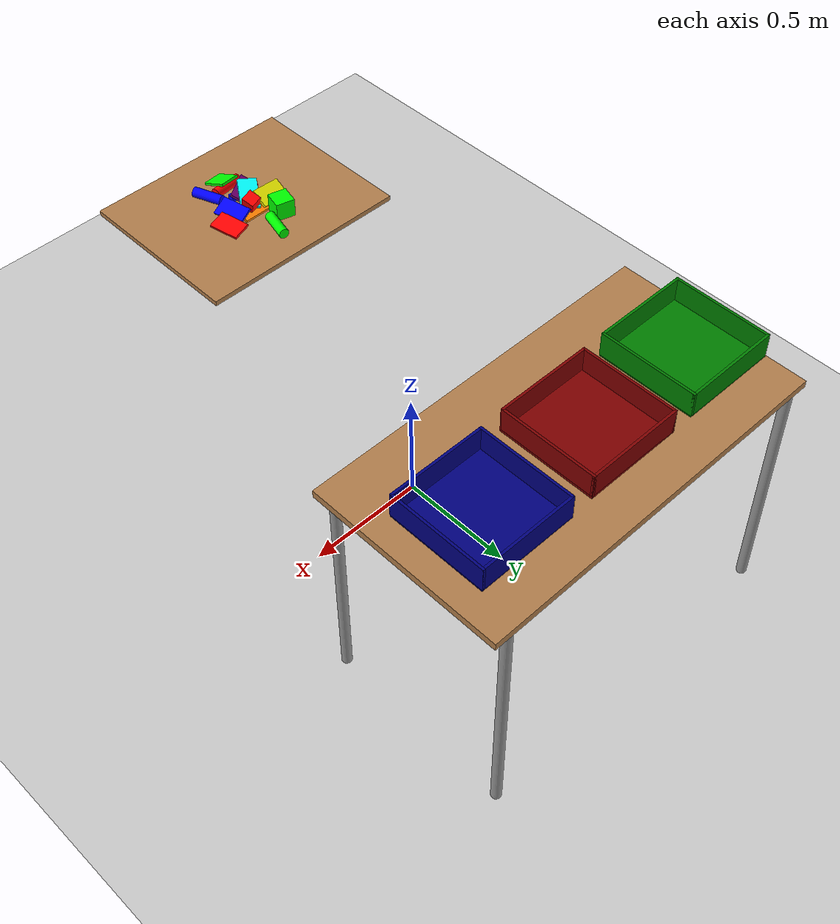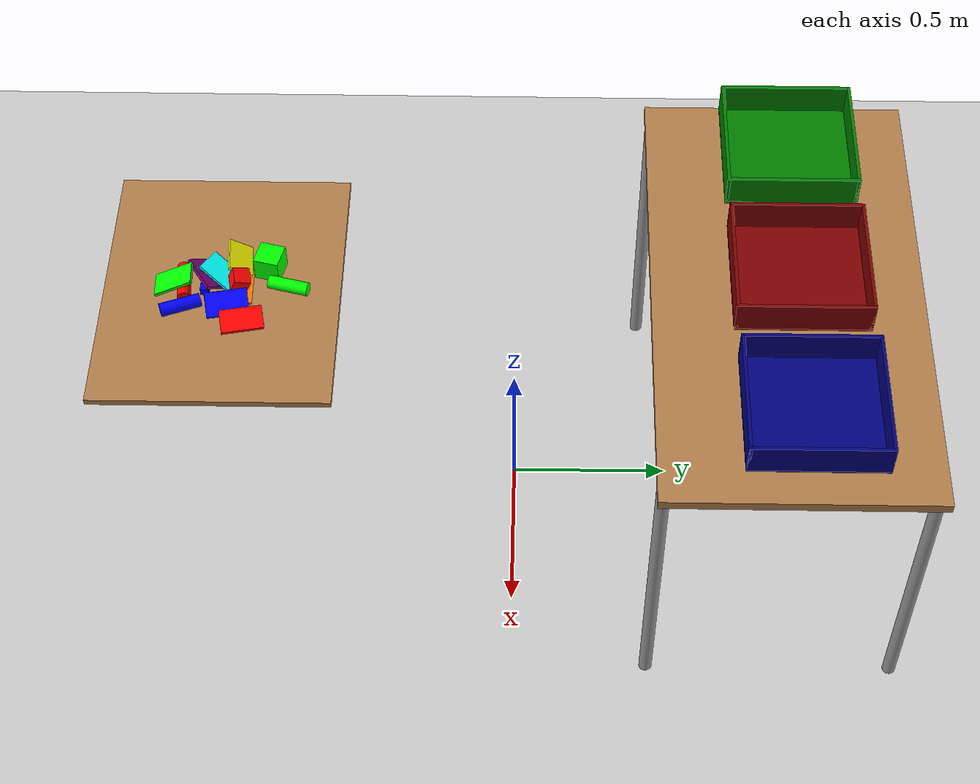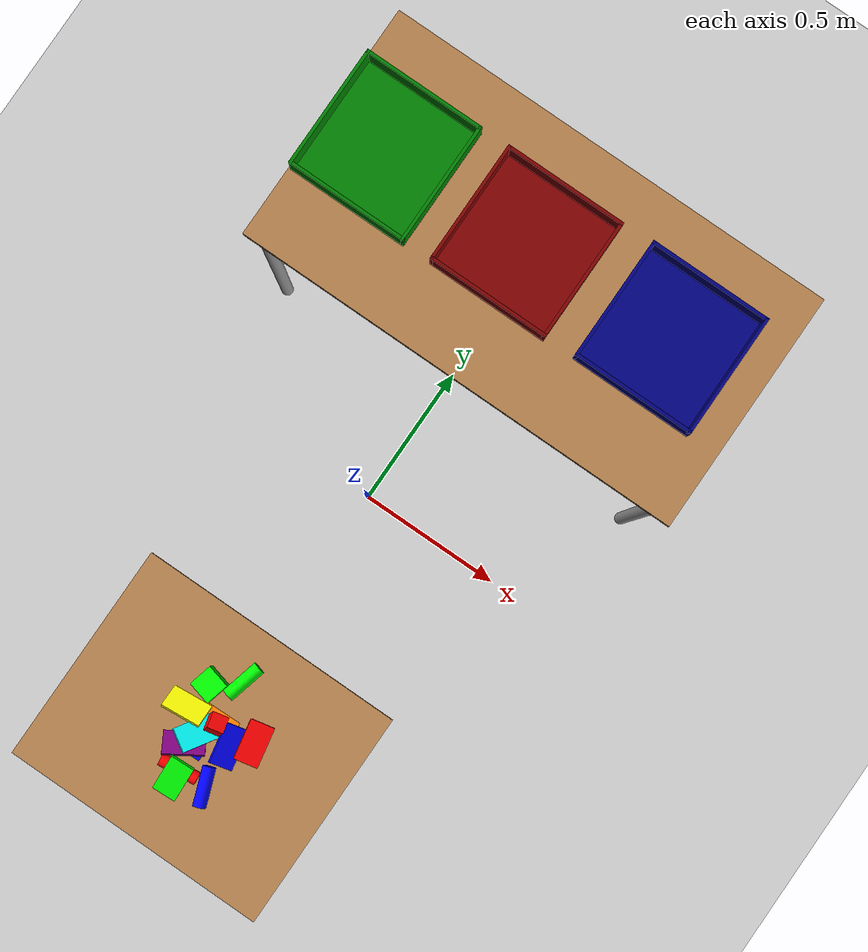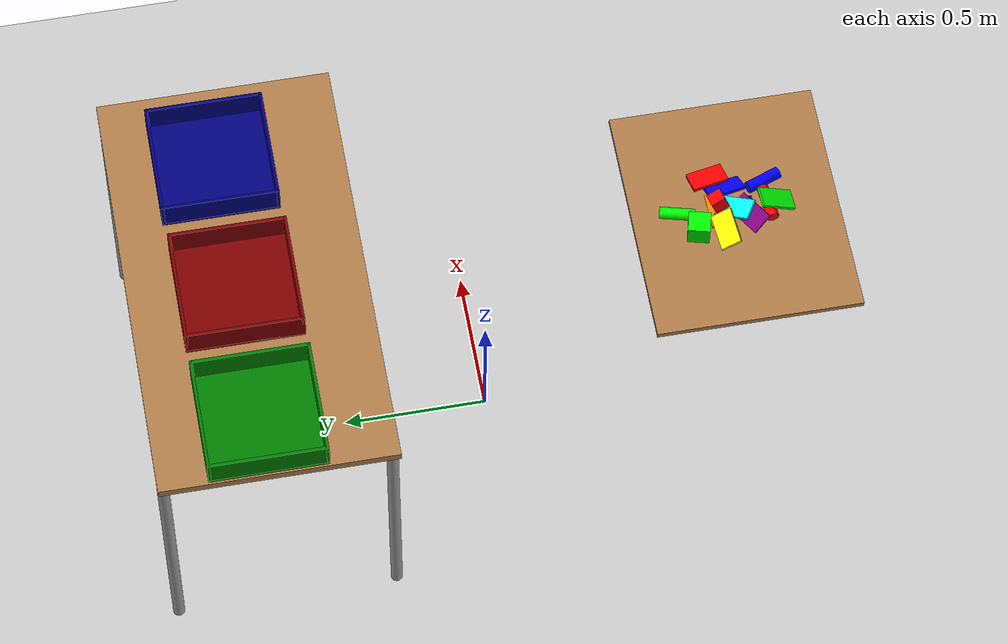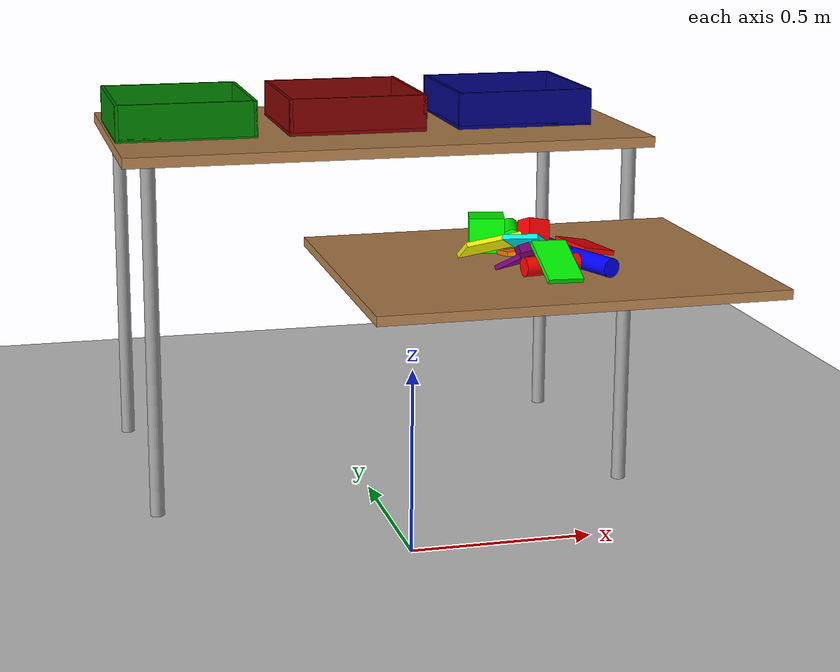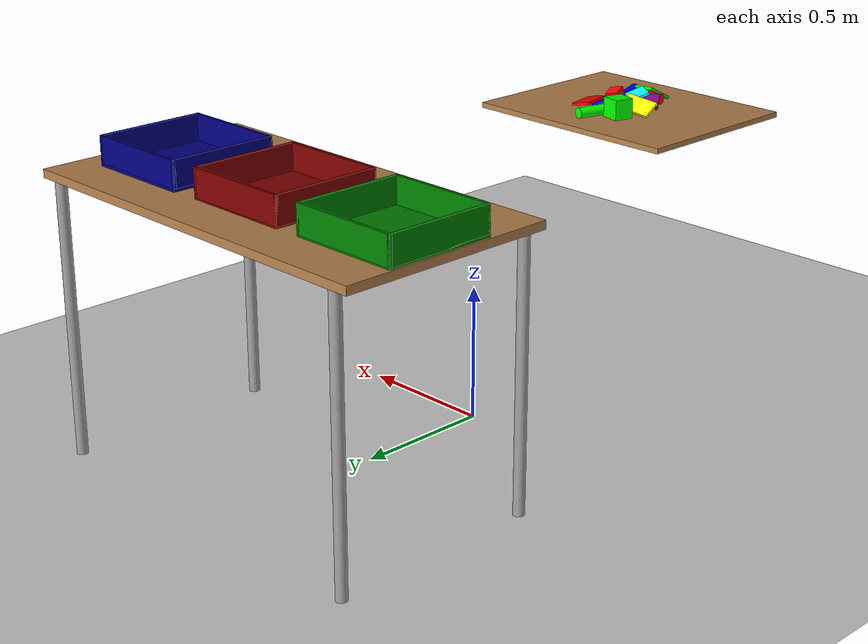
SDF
<sdf version="1.7">
 <world name="default">
  <light name="sun" type="directional">
   <pose>0 0 10 0 -0 0</pose>
   <diffuse>0.8 0.8 0.8 1</diffuse>
   <specular>0.2 0.2 0.2 1</specular>
   <attenuation>
    <range>1000</range>
    <constant>0.9</constant>
    <linear>0.01</linear>
    <quadratic>0.001</quadratic>
   </attenuation>
   <direction>-0.5 0.1 -0.9</direction>
   <spot><inner_angle>0</inner_angle><outer_angle>0</outer_angle><falloff>0</falloff></spot>
  </light>
  <model name="ground_plane">
   <static>1</static>
   <link name="link">
    <collision name="collision">
     <geometry><plane><normal>0 0 1</normal><size>100 100</size></plane></geometry>
     <surface><friction><ode><mu>100</mu><mu2>50</mu2></ode></friction></surface>
    </collision>
    <visual name="visual">
     <cast_shadows>0</cast_shadows>
     <geometry><plane><normal>0 0 1</normal><size>100 100</size></plane></geometry>
     <material>
      <script><uri>file://media/materials/scripts/gazebo.material</uri><name>Gazebo/Grey</name></script>
     </material>
    </visual>
   </link>
  </model>
  <gravity>0 0 -9.8</gravity>
  <magnetic_field>6e-06 2.3e-05 -4.2e-05</magnetic_field>
  <atmosphere type="adiabatic"/>
  <physics type="ode">
   <max_step_size>0.001</max_step_size>
   <real_time_factor>1</real_time_factor>
   <real_time_update_rate>1000</real_time_update_rate>
  </physics>
  <scene><ambient>0.4 0.4 0.4 1</ambient><background>0.7 0.7 0.7 1</background><shadows>1</shadows></scene>
  <audio><device>default</device></audio>
  <spherical_coordinates>
   <surface_model>EARTH_WGS84</surface_model>
   <latitude_deg>0</latitude_deg>
   <longitude_deg>0</longitude_deg>
   <elevation>0</elevation>
   <heading_deg>0</heading_deg>
  </spherical_coordinates>
  <model name="table">
   <static>1</static>
   <link name="link">
    <collision name="surface">
     <pose>0 0 1 0 -0 0</pose>
     <geometry><box><size>1.5 0.8 0.03</size></box></geometry>
     <surface>
      <friction><ode><mu>10</mu><mu2>5</mu2></ode></friction>
      <contact><ode><soft_cfm>0.0001</soft_cfm><soft_erp>0.4</soft_erp><kp>1e+06</kp><kd>10</kd></ode></contact>
     </surface>
    </collision>
    <visual name="visual1">
     <pose>0 0 1 0 -0 0</pose>
     <geometry><box><size>1.5 0.8 0.03</size></box></geometry>
     <material>
      <script><uri>file://media/materials/scripts/gazebo.material</uri><name>Gazebo/Wood</name></script>
     </material>
    </visual>
    <collision name="front_left_leg">
     <pose>0.68 0.38 0.5 0 -0 0</pose>
     <geometry><cylinder><radius>0.02</radius><length>1</length></cylinder></geometry>
    </collision>
    <visual name="front_left_leg">
     <pose>0.68 0.38 0.5 0 -0 0</pose>
     <geometry><cylinder><radius>0.02</radius><length>1</length></cylinder></geometry>
     <material>
      <script><uri>file://media/materials/scripts/gazebo.material</uri><name>Gazebo/Grey</name></script>
     </material>
    </visual>
    <collision name="front_right_leg">
     <pose>0.68 -0.38 0.5 0 -0 0</pose>
     <geometry><cylinder><radius>0.02</radius><length>1</length></cylinder></geometry>
    </collision>
    <visual name="front_right_leg">
     <pose>0.68 -0.38 0.5 0 -0 0</pose>
     <geometry><cylinder><radius>0.02</radius><length>1</length></cylinder></geometry>
     <material>
      <script><uri>file://media/materials/scripts/gazebo.material</uri><name>Gazebo/Grey</name></script>
     </material>
    </visual>
    <collision name="back_right_leg">
     <pose>-0.68 -0.38 0.5 0 -0 0</pose>
     <geometry><cylinder><radius>0.02</radius><length>1</length></cylinder></geometry>
    </collision>
    <visual name="back_right_leg">
     <pose>-0.68 -0.38 0.5 0 -0 0</pose>
     <geometry><cylinder><radius>0.02</radius><length>1</length></cylinder></geometry>
     <material>
      <script><uri>file://media/materials/scripts/gazebo.material</uri><name>Gazebo/Grey</name></script>
     </material>
    </visual>
    <collision name="back_left_leg">
     <pose>-0.68 0.38 0.5 0 -0 0</pose>
     <geometry><cylinder><radius>0.02</radius><length>1</length></cylinder></geometry>
    </collision>
    <visual name="back_left_leg">
     <pose>-0.68 0.38 0.5 0 -0 0</pose>
     <geometry><cylinder><radius>0.02</radius><length>1</length></cylinder></geometry>
     <material>
      <script><uri>file://media/materials/scripts/gazebo.material</uri><name>Gazebo/Grey</name></script>
     </material>
    </visual>
    <inertial>
     <inertia><ixx>1</ixx><ixy>0</ixy><ixz>0</ixz><iyy>1</iyy><iyz>0</iyz><izz>1</izz></inertia>
     <mass>50</mass>
    </inertial>
   </link>
   <pose>0.056083 0.801191 -1.2e-05 0 -0 2.5e-05</pose>
  </model>
  <plugin name="gazebo_link_attacher" filename="libgazebo_link_attacher.so"/>
  <plugin name="gazebo_ros_state" filename="libgazebo_ros_state.so">
   <namespace>/gazebo</namespace>
   <update_rate>100</update_rate>
  </plugin>
  <model name="cube_b">
   <link name="link_2">
    <inertial>
     <mass>2</mass>
     <inertia>
      <ixx>0.00020833</ixx>
      <ixy>0</ixy>
      <ixz>0</ixz>
      <iyy>0.00020833</iyy>
      <iyz>0</iyz>
      <izz>0.00020833</izz>
     </inertia>
    </inertial>
    <visual name="visual">
     <geometry><box><size>0.025 0.025 0.025</size></box></geometry>
     <material>
      <lighting>1</lighting>
      <script><uri>file://media/materials/scripts/gazebo.material</uri><name>Gazebo/Grey</name></script>
      <ambient>0 0 1 1</ambient>
      <diffuse>0 0 1 1</diffuse>
      <specular>0 0 0 1</specular>
      <emissive>0 0 0 1</emissive>
      <shader type="vertex"><normal_map>__default__</normal_map></shader>
     </material>
    </visual>
    <collision name="collision">
     <geometry><box><size>0.025 0.025 0.025</size></box></geometry>
     <surface>
      <friction>
       <ode><mu>0.8</mu><mu2>0.8</mu2><fdir1>0 0 0</fdir1><slip1>0</slip1><slip2>0</slip2></ode>
       <torsional>
        <coefficient>1</coefficient>
        <patch_radius>0</patch_radius>
        <surface_radius>0</surface_radius>
        <use_patch_radius>1</use_patch_radius>
        <ode><slip>0</slip></ode>
       </torsional>
      </friction>
      <bounce><restitution_coefficient>0</restitution_coefficient><threshold>1e+06</threshold></bounce>
      <contact>
       <collide_without_contact>0</collide_without_contact>
       <collide_without_contact_bitmask>1</collide_without_contact_bitmask>
       <collide_bitmask>1</collide_bitmask>
       <ode>
        <soft_cfm>0.0001</soft_cfm>
        <soft_erp>0.4</soft_erp>
        <kp>1e+06</kp>
        <kd>10</kd>
        <max_vel>0.01</max_vel>
        <min_depth>0</min_depth>
       </ode>
      </contact>
     </surface>
    </collision>
   </link>
   <static>0</static>
   <allow_auto_disable>0</allow_auto_disable>
   <pose>0.061291 -0.908481 0.998237 0.001366 -0.004871 0.020341</pose>
  </model>
  <model name="cube_g">
   <link name="link_2">
    <inertial>
     <mass>2</mass>
     <inertia>
      <ixx>0.001875</ixx>
      <iyy>0.001875</iyy>
      <izz>0.001875</izz>
      <ixy>0</ixy>
      <ixz>0</ixz>
      <iyz>0</iyz>
     </inertia>
    </inertial>
    <visual name="visual">
     <geometry><box><size>0.075 0.075 0.075</size></box></geometry>
     <material>
      <lighting>1</lighting>
      <script><uri>file://media/materials/scripts/gazebo.material</uri><name>Gazebo/Grey</name></script>
      <ambient>0 1 0 1</ambient>
      <diffuse>0 1 0 1</diffuse>
      <specular>0 0 0 1</specular>
      <emissive>0 0 0 1</emissive>
      <shader type="vertex"><normal_map>__default__</normal_map></shader>
     </material>
    </visual>
    <collision name="collision">
     <geometry><box><size>0.075 0.075 0.075</size></box></geometry>
     <surface>
      <friction>
       <ode><mu>0.8</mu><mu2>0.8</mu2><fdir1>0 0 0</fdir1><slip1>0</slip1><slip2>0</slip2></ode>
       <torsional>
        <coefficient>1</coefficient>
        <patch_radius>0</patch_radius>
        <surface_radius>0</surface_radius>
        <use_patch_radius>1</use_patch_radius>
        <ode><slip>0</slip></ode>
       </torsional>
      </friction>
      <bounce><restitution_coefficient>0</restitution_coefficient><threshold>1e+06</threshold></bounce>
      <contact>
       <collide_without_contact>0</collide_without_contact>
       <collide_without_contact_bitmask>1</collide_without_contact_bitmask>
       <collide_bitmask>1</collide_bitmask>
       <ode>
        <soft_cfm>0.0001</soft_cfm>
        <soft_erp>0.4</soft_erp>
        <kp>1e+06</kp>
        <kd>10</kd>
        <max_vel>0.01</max_vel>
        <min_depth>0</min_depth>
       </ode>
      </contact>
     </surface>
    </collision>
   </link>
   <static>0</static>
   <allow_auto_disable>0</allow_auto_disable>
   <pose>-0.02398 -0.72136 1.02313 0.002108 -0.003753 -0.247132</pose>
  </model>
  <model name="cube_r">
   <link name="link_2">
    <inertial>
     <mass>2</mass>
     <inertia>
      <ixx>0.0008333</ixx>
      <ixy>0</ixy>
      <ixz>0</ixz>
      <iyy>0.0008333</iyy>
      <iyz>0</iyz>
      <izz>0.0008333</izz>
     </inertia>
    </inertial>
    <visual name="visual">
     <geometry><box><size>0.05 0.05 0.05</size></box></geometry>
     <material>
      <lighting>1</lighting>
      <script><uri>file://media/materials/scripts/gazebo.material</uri><name>Gazebo/Grey</name></script>
      <ambient>1 0 0 1</ambient>
      <diffuse>1 0 0 1</diffuse>
      <specular>0 0 0 1</specular>
      <emissive>0 0 0 1</emissive>
      <shader type="vertex"><normal_map>__default__</normal_map></shader>
     </material>
    </visual>
    <collision name="collision">
     <geometry><box><size>0.05 0.05 0.05</size></box></geometry>
     <surface>
      <friction>
       <ode><mu>0.8</mu><mu2>0.8</mu2><fdir1>0 0 0</fdir1><slip1>0</slip1><slip2>0</slip2></ode>
       <torsional>
        <coefficient>1</coefficient>
        <patch_radius>0</patch_radius>
        <surface_radius>0</surface_radius>
        <use_patch_radius>1</use_patch_radius>
        <ode><slip>0</slip></ode>
       </torsional>
      </friction>
      <bounce><restitution_coefficient>0</restitution_coefficient><threshold>1e+06</threshold></bounce>
      <contact>
       <collide_without_contact>0</collide_without_contact>
       <collide_without_contact_bitmask>1</collide_without_contact_bitmask>
       <collide_bitmask>1</collide_bitmask>
       <ode>
        <soft_cfm>0.0001</soft_cfm>
        <soft_erp>0.4</soft_erp>
        <kp>1e+06</kp>
        <kd>10</kd>
        <max_vel>0.01</max_vel>
        <min_depth>0</min_depth>
       </ode>
      </contact>
     </surface>
    </collision>
   </link>
   <static>0</static>
   <allow_auto_disable>0</allow_auto_disable>
   <pose>0.056354 -0.802284 1.03751 -0.335248 0.20733 0.188557</pose>
  </model>
  <model name="cylinder_r">
   <link name="link_0">
    <inertial>
     <mass>0.2</mass>
     <inertia><ixx>0.00027</ixx><ixy>0</ixy><ixz>0</ixz><iyy>0.00027</iyy><iyz>0</iyz><izz>4e-05</izz></inertia>
    </inertial>
    <visual name="visual">
     <geometry><cylinder><radius>0.02</radius><length>0.12</length></cylinder></geometry>
     <material>
      <lighting>1</lighting>
      <script><uri>file://media/materials/scripts/gazebo.material</uri><name>Gazebo/Grey</name></script>
      <ambient>1 0 0 1</ambient>
      <diffuse>1 0 0 1</diffuse>
      <specular>0 0 0 1</specular>
      <emissive>0 0 0 1</emissive>
      <shader type="vertex"><normal_map>__default__</normal_map></shader>
     </material>
    </visual>
    <collision name="collision">
     <geometry><cylinder><radius>0.02</radius><length>0.12</length></cylinder></geometry>
     <surface>
      <friction>
       <ode><mu>0.5</mu><mu2>0.5</mu2><fdir1>0 0 0</fdir1><slip1>0</slip1><slip2>0</slip2></ode>
       <torsional>
        <coefficient>1</coefficient>
        <patch_radius>0</patch_radius>
        <surface_radius>0</surface_radius>
        <use_patch_radius>1</use_patch_radius>
        <ode><slip>0</slip></ode>
       </torsional>
      </friction>
      <bounce><restitution_coefficient>0</restitution_coefficient><threshold>1e+06</threshold></bounce>
      <contact>
       <collide_without_contact>0</collide_without_contact>
       <collide_without_contact_bitmask>1</collide_without_contact_bitmask>
       <collide_bitmask>1</collide_bitmask>
       <ode>
        <soft_cfm>0.0001</soft_cfm>
        <soft_erp>0.4</soft_erp>
        <kp>1e+06</kp>
        <kd>10</kd>
        <max_vel>0.01</max_vel>
        <min_depth>0</min_depth>
       </ode>
      </contact>
     </surface>
    </collision>
   </link>
   <static>0</static>
   <allow_auto_disable>0</allow_auto_disable>
   <pose>0.040597 -0.970969 1.00561 -1.57592 0.574521 1.67431</pose>
  </model>
  <model name="cylinder_b">
   <link name="link_0">
    <inertial>
     <mass>0.2</mass>
     <inertia><ixx>0.00027</ixx><ixy>0</ixy><ixz>0</ixz><iyy>0.00027</iyy><iyz>0</iyz><izz>4e-05</izz></inertia>
    </inertial>
    <visual name="visual">
     <geometry><cylinder><radius>0.02</radius><length>0.12</length></cylinder></geometry>
     <material>
      <lighting>1</lighting>
      <ambient>0 0 1 1</ambient>
      <diffuse>0 0 1 1</diffuse>
      <specular>0.1 0.1 0.1 1</specular>
      <emissive>0 0 0 1</emissive>
      <shader type="vertex"><normal_map>__default__</normal_map></shader>
     </material>
    </visual>
    <collision name="collision">
     <geometry><cylinder><radius>0.02</radius><length>0.12</length></cylinder></geometry>
     <surface>
      <friction>
       <ode><mu>0.4</mu><mu2>0.4</mu2><fdir1>0 0 0</fdir1><slip1>0</slip1><slip2>0</slip2></ode>
       <torsional>
        <coefficient>1</coefficient>
        <patch_radius>0</patch_radius>
        <surface_radius>0</surface_radius>
        <use_patch_radius>1</use_patch_radius>
        <ode><slip>0</slip></ode>
       </torsional>
      </friction>
      <bounce><restitution_coefficient>0</restitution_coefficient><threshold>1e+06</threshold></bounce>
      <contact>
       <collide_without_contact>0</collide_without_contact>
       <collide_without_contact_bitmask>1</collide_without_contact_bitmask>
       <collide_bitmask>1</collide_bitmask>
       <ode>
        <soft_cfm>0.0001</soft_cfm>
        <soft_erp>0.4</soft_erp>
        <kp>1e+06</kp>
        <kd>10</kd>
        <max_vel>0.01</max_vel>
        <min_depth>0</min_depth>
       </ode>
      </contact>
     </surface>
    </collision>
   </link>
   <static>0</static>
   <allow_auto_disable>0</allow_auto_disable>
   <pose>0.129868 -0.972339 1.00598 1.56953 -1.24362 0.360339</pose>
  </model>
  <model name="cylinder_g">
   <link name="link_0">
    <inertial>
     <mass>0.2</mass>
     <inertia><ixx>0.00027</ixx><ixy>0</ixy><ixz>0</ixz><iyy>0.00027</iyy><iyz>0</iyz><izz>4e-05</izz></inertia>
    </inertial>
    <visual name="visual">
     <geometry><cylinder><radius>0.02</radius><length>0.12</length></cylinder></geometry>
     <material>
      <lighting>1</lighting>
      <ambient>0 1 0 1</ambient>
      <diffuse>0 1 0 1</diffuse>
      <specular>0.1 0.1 0.1 1</specular>
      <emissive>0 0 0 1</emissive>
      <shader type="vertex"><normal_map>__default__</normal_map></shader>
     </material>
    </visual>
    <collision name="collision">
     <geometry><cylinder><radius>0.02</radius><length>0.12</length></cylinder></geometry>
     <surface>
      <friction>
       <ode><mu>0.5</mu><mu2>0.5</mu2><fdir1>0 0 0</fdir1><slip1>0</slip1><slip2>0</slip2></ode>
       <torsional>
        <coefficient>1</coefficient>
        <patch_radius>0</patch_radius>
        <surface_radius>0</surface_radius>
        <use_patch_radius>1</use_patch_radius>
        <ode><slip>0</slip></ode>
       </torsional>
      </friction>
      <bounce><restitution_coefficient>0</restitution_coefficient><threshold>1e+06</threshold></bounce>
      <contact>
       <collide_without_contact>0</collide_without_contact>
       <collide_without_contact_bitmask>1</collide_without_contact_bitmask>
       <collide_bitmask>1</collide_bitmask>
       <ode>
        <soft_cfm>0.0001</soft_cfm>
        <soft_erp>0.4</soft_erp>
        <kp>1e+06</kp>
        <kd>10</kd>
        <max_vel>0.01</max_vel>
        <min_depth>0</min_depth>
       </ode>
      </contact>
     </surface>
    </collision>
   </link>
   <static>0</static>
   <allow_auto_disable>0</allow_auto_disable>
   <pose>0.050473 -0.661803 1.00601 1.56839 -0.500777 2.89467</pose>
  </model>
  <model name="cuboid_r">
   <link name="link">
    <inertial>
     <mass>2</mass>
     <inertia>
      <ixx>0.000954</ixx>
      <iyy>0.002621</iyy>
      <izz>0.003542</izz>
      <ixy>0</ixy>
      <ixz>0</ixz>
      <iyz>0</iyz>
     </inertia>
    </inertial>
    <visual name="visual">
     <geometry><box><size>0.125 0.075 0.01</size></box></geometry>
     <material><ambient>1 0 0 1</ambient><diffuse>1 0 0 1</diffuse><specular>0.1 0.1 0.1 1</specular></material>
    </visual>
    <collision name="collision">
     <geometry><box><size>0.125 0.075 0.01</size></box></geometry>
     <surface>
      <friction>
       <ode><mu>0.6</mu><mu2>0.6</mu2><fdir1>0 0 0</fdir1><slip1>0</slip1><slip2>0</slip2></ode>
       <torsional>
        <coefficient>1</coefficient>
        <patch_radius>0</patch_radius>
        <surface_radius>0</surface_radius>
        <use_patch_radius>1</use_patch_radius>
        <ode><slip>0</slip></ode>
       </torsional>
      </friction>
      <bounce><restitution_coefficient>0</restitution_coefficient><threshold>1e+06</threshold></bounce>
      <contact>
       <collide_without_contact>0</collide_without_contact>
       <collide_without_contact_bitmask>1</collide_without_contact_bitmask>
       <collide_bitmask>1</collide_bitmask>
       <ode>
        <soft_cfm>0.0001</soft_cfm>
        <soft_erp>0.4</soft_erp>
        <kp>1e+06</kp>
        <kd>10</kd>
        <max_vel>0.01</max_vel>
        <min_depth>0</min_depth>
       </ode>
      </contact>
     </surface>
    </collision>
   </link>
   <static>0</static>
   <allow_auto_disable>0</allow_auto_disable>
   <pose>0.17634 -0.790156 0.99848 -0.188793 0.000392 -1.38148</pose>
  </model>
  <model name="cuboid_g">
   <link name="link">
    <inertial>
     <mass>2</mass>
     <inertia>
      <ixx>0.000954</ixx>
      <iyy>0.002621</iyy>
      <izz>0.003542</izz>
      <ixy>0</ixy>
      <ixz>0</ixz>
      <iyz>0</iyz>
     </inertia>
    </inertial>
    <visual name="visual">
     <geometry><box><size>0.125 0.075 0.01</size></box></geometry>
     <material><ambient>0 1 0 1</ambient><diffuse>0 1 0 1</diffuse><specular>0.1 0.1 0.1 1</specular></material>
    </visual>
    <collision name="collision">
     <geometry><box><size>0.125 0.075 0.01</size></box></geometry>
     <surface>
      <friction>
       <ode><mu>0.6</mu><mu2>0.6</mu2><fdir1>0 0 0</fdir1><slip1>0</slip1><slip2>0</slip2></ode>
       <torsional>
        <coefficient>1</coefficient>
        <patch_radius>0</patch_radius>
        <surface_radius>0</surface_radius>
        <use_patch_radius>1</use_patch_radius>
        <ode><slip>0</slip></ode>
       </torsional>
      </friction>
      <bounce><restitution_coefficient>0</restitution_coefficient><threshold>1e+06</threshold></bounce>
      <contact>
       <collide_without_contact>0</collide_without_contact>
       <collide_without_contact_bitmask>1</collide_without_contact_bitmask>
       <collide_bitmask>1</collide_bitmask>
       <ode>
        <soft_cfm>0.0001</soft_cfm>
        <soft_erp>0.4</soft_erp>
        <kp>1e+06</kp>
        <kd>10</kd>
        <max_vel>0.01</max_vel>
        <min_depth>0</min_depth>
       </ode>
      </contact>
     </surface>
    </collision>
   </link>
   <static>0</static>
   <allow_auto_disable>0</allow_auto_disable>
   <pose>0.043221 -1.00007 1.01899 0.030854 -0.460742 1.59849</pose>
  </model>
  <model name="cuboid_b">
   <link name="link">
    <inertial>
     <mass>2</mass>
     <inertia>
      <ixx>0.000954</ixx>
      <iyy>0.002621</iyy>
      <izz>0.003542</izz>
      <ixy>0</ixy>
      <ixz>0</ixz>
      <iyz>0</iyz>
     </inertia>
    </inertial>
    <visual name="visual">
     <geometry><box><size>0.125 0.075 0.01</size></box></geometry>
     <material><ambient>0 0 1 1</ambient><diffuse>0 0 1 1</diffuse><specular>0.1 0.1 0.1 1</specular></material>
    </visual>
    <collision name="collision">
     <geometry><box><size>0.125 0.075 0.01</size></box></geometry>
     <surface>
      <friction>
       <ode><mu>0.6</mu><mu2>0.6</mu2><fdir1>0 0 0</fdir1><slip1>0</slip1><slip2>0</slip2></ode>
       <torsional>
        <coefficient>1</coefficient>
        <patch_radius>0</patch_radius>
        <surface_radius>0</surface_radius>
        <use_patch_radius>1</use_patch_radius>
        <ode><slip>0</slip></ode>
       </torsional>
      </friction>
      <bounce><restitution_coefficient>0</restitution_coefficient><threshold>1e+06</threshold></bounce>
      <contact>
       <collide_without_contact>0</collide_without_contact>
       <collide_without_contact_bitmask>1</collide_without_contact_bitmask>
       <collide_bitmask>1</collide_bitmask>
       <ode>
        <soft_cfm>0.0001</soft_cfm>
        <soft_erp>0.4</soft_erp>
        <kp>1e+06</kp>
        <kd>10</kd>
        <max_vel>0.01</max_vel>
        <min_depth>0</min_depth>
       </ode>
      </contact>
     </surface>
    </collision>
   </link>
   <static>0</static>
   <allow_auto_disable>0</allow_auto_disable>
   <pose>0.12173 -0.837705 1.00724 -0.456325 0.000255 -1.38228</pose>
  </model>
  <model name="cuboid_purple">
   <link name="link">
    <inertial>
     <mass>2</mass>
     <inertia>
      <ixx>0.000954</ixx>
      <iyy>0.002621</iyy>
      <izz>0.003542</izz>
      <ixy>0</ixy>
      <ixz>0</ixz>
      <iyz>0</iyz>
     </inertia>
    </inertial>
    <visual name="visual">
     <geometry><box><size>0.125 0.075 0.01</size></box></geometry>
     <material>
      <ambient>0.5 0 0.5 1</ambient>
      <diffuse>0.5 0 0.5 1</diffuse>
      <specular>0.1 0.1 0.1 1</specular>
     </material>
    </visual>
    <collision name="collision">
     <geometry><box><size>0.125 0.075 0.01</size></box></geometry>
     <surface>
      <friction>
       <ode><mu>0.6</mu><mu2>0.6</mu2><fdir1>0 0 0</fdir1><slip1>0</slip1><slip2>0</slip2></ode>
       <torsional>
        <coefficient>1</coefficient>
        <patch_radius>0</patch_radius>
        <surface_radius>0</surface_radius>
        <use_patch_radius>1</use_patch_radius>
        <ode><slip>0</slip></ode>
       </torsional>
      </friction>
      <bounce><restitution_coefficient>0</restitution_coefficient><threshold>1e+06</threshold></bounce>
      <contact>
       <collide_without_contact>0</collide_without_contact>
       <collide_without_contact_bitmask>1</collide_without_contact_bitmask>
       <collide_bitmask>1</collide_bitmask>
       <ode>
        <soft_cfm>0.0001</soft_cfm>
        <soft_erp>0.4</soft_erp>
        <kp>1e+06</kp>
        <kd>10</kd>
        <max_vel>0.01</max_vel>
        <min_depth>0</min_depth>
       </ode>
      </contact>
     </surface>
    </collision>
   </link>
   <static>0</static>
   <allow_auto_disable>0</allow_auto_disable>
   <pose>0.010756 -0.902499 1.00769 -0.498954 -0.002605 0.57095</pose>
  </model>
  <model name="cuboid_orange">
   <link name="link">
    <inertial>
     <mass>2</mass>
     <inertia>
      <ixx>0.000954</ixx>
      <iyy>0.002621</iyy>
      <izz>0.003542</izz>
      <ixy>0</ixy>
      <ixz>0</ixz>
      <iyz>0</iyz>
     </inertia>
    </inertial>
    <visual name="visual">
     <geometry><box><size>0.125 0.075 0.01</size></box></geometry>
     <material>
      <ambient>1 0.5 0 1</ambient>
      <diffuse>1 0.5 0 1</diffuse>
      <specular>0.1 0.1 0.1 1</specular>
     </material>
    </visual>
    <collision name="collision">
     <geometry><box><size>0.125 0.075 0.01</size></box></geometry>
     <surface>
      <friction>
       <ode><mu>0.6</mu><mu2>0.6</mu2><fdir1>0 0 0</fdir1><slip1>0</slip1><slip2>0</slip2></ode>
       <torsional>
        <coefficient>1</coefficient>
        <patch_radius>0</patch_radius>
        <surface_radius>0</surface_radius>
        <use_patch_radius>1</use_patch_radius>
        <ode><slip>0</slip></ode>
       </torsional>
      </friction>
      <bounce><restitution_coefficient>0</restitution_coefficient><threshold>1e+06</threshold></bounce>
      <contact>
       <collide_without_contact>0</collide_without_contact>
       <collide_without_contact_bitmask>1</collide_without_contact_bitmask>
       <collide_bitmask>1</collide_bitmask>
       <ode>
        <soft_cfm>0.0001</soft_cfm>
        <soft_erp>0.4</soft_erp>
        <kp>1e+06</kp>
        <kd>10</kd>
        <max_vel>0.01</max_vel>
        <min_depth>0</min_depth>
       </ode>
      </contact>
     </surface>
    </collision>
   </link>
   <static>0</static>
   <allow_auto_disable>0</allow_auto_disable>
   <pose>0.048768 -0.805726 0.996245 -0.146842 -0.003535 0.0184</pose>
  </model>
  <model name="cuboid_yellow">
   <link name="link">
    <inertial>
     <mass>2</mass>
     <inertia>
      <ixx>0.000954</ixx>
      <iyy>0.002621</iyy>
      <izz>0.003542</izz>
      <ixy>0</ixy>
      <ixz>0</ixz>
      <iyz>0</iyz>
     </inertia>
    </inertial>
    <visual name="visual">
     <geometry><box><size>0.125 0.075 0.01</size></box></geometry>
     <material><ambient>1 1 0 1</ambient><diffuse>1 1 0 1</diffuse><specular>0.1 0.1 0.1 1</specular></material>
    </visual>
    <collision name="collision">
     <geometry><box><size>0.125 0.075 0.01</size></box></geometry>
     <surface>
      <friction>
       <ode><mu>0.6</mu><mu2>0.6</mu2><fdir1>0 0 0</fdir1><slip1>0</slip1><slip2>0</slip2></ode>
       <torsional>
        <coefficient>1</coefficient>
        <patch_radius>0</patch_radius>
        <surface_radius>0</surface_radius>
        <use_patch_radius>1</use_patch_radius>
        <ode><slip>0</slip></ode>
       </torsional>
      </friction>
      <bounce><restitution_coefficient>0</restitution_coefficient><threshold>1e+06</threshold></bounce>
      <contact>
       <collide_without_contact>0</collide_without_contact>
       <collide_without_contact_bitmask>1</collide_without_contact_bitmask>
       <collide_bitmask>1</collide_bitmask>
       <ode>
        <soft_cfm>0.0001</soft_cfm>
        <soft_erp>0.4</soft_erp>
        <kp>1e+06</kp>
        <kd>10</kd>
        <max_vel>0.01</max_vel>
        <min_depth>0</min_depth>
       </ode>
      </contact>
     </surface>
    </collision>
   </link>
   <static>0</static>
   <allow_auto_disable>0</allow_auto_disable>
   <pose>-0.043414 -0.811031 1.01648 -0.540014 -0.126837 0.100238</pose>
  </model>
  <model name="cuboid_cyan">
   <link name="link">
    <inertial>
     <mass>2</mass>
     <inertia>
      <ixx>0.000954</ixx>
      <iyy>0.002621</iyy>
      <izz>0.003542</izz>
      <ixy>0</ixy>
      <ixz>0</ixz>
      <iyz>0</iyz>
     </inertia>
    </inertial>
    <visual name="visual">
     <geometry><box><size>0.125 0.075 0.01</size></box></geometry>
     <material><ambient>0 1 1 1</ambient><diffuse>0 1 1 1</diffuse><specular>0.1 0.1 0.1 1</specular></material>
    </visual>
    <collision name="collision">
     <geometry><box><size>0.125 0.075 0.01</size></box></geometry>
     <surface>
      <friction>
       <ode><mu>0.6</mu><mu2>0.6</mu2><fdir1>0 0 0</fdir1><slip1>0</slip1><slip2>0</slip2></ode>
       <torsional>
        <coefficient>1</coefficient>
        <patch_radius>0</patch_radius>
        <surface_radius>0</surface_radius>
        <use_patch_radius>1</use_patch_radius>
        <ode><slip>0</slip></ode>
       </torsional>
      </friction>
      <bounce><restitution_coefficient>0</restitution_coefficient><threshold>1e+06</threshold></bounce>
      <contact>
       <collide_without_contact>0</collide_without_contact>
       <collide_without_contact_bitmask>1</collide_without_contact_bitmask>
       <collide_bitmask>1</collide_bitmask>
       <ode>
        <soft_cfm>0.0001</soft_cfm>
        <soft_erp>0.4</soft_erp>
        <kp>1e+06</kp>
        <kd>10</kd>
        <max_vel>0.01</max_vel>
        <min_depth>0</min_depth>
       </ode>
      </contact>
     </surface>
    </collision>
   </link>
   <static>0</static>
   <allow_auto_disable>0</allow_auto_disable>
   <pose>0.02645 -0.853882 1.02905 0.090328 -0.376945 -2.15406</pose>
  </model>
  <model name="workspace">
   <link name="link">
    <inertial>
     <mass>100</mass>
     <inertia><ixx>6.02417</ixx><ixy>0</ixy><ixz>0</ixz><iyy>4.08667</iyy><iyz>0</iyz><izz>10.1042</izz></inertia>
    </inertial>
    <visual name="visual">
     <geometry><box><size>0.7 0.85 0.02</size></box></geometry>
     <material>
      <script><name>Gazebo/Wood</name><uri>file://media/materials/scripts/gazebo.material</uri></script>
      <shader type="pixel"/>
     </material>
    </visual>
    <collision name="collision">
     <geometry><box><size>0.7 0.85 0.02</size></box></geometry>
     <surface>
      <friction>
       <ode><mu>100</mu><mu2>50</mu2><fdir1>0 0 0</fdir1><slip1>0</slip1><slip2>0</slip2></ode>
       <torsional>
        <coefficient>1</coefficient>
        <patch_radius>0</patch_radius>
        <surface_radius>0</surface_radius>
        <use_patch_radius>1</use_patch_radius>
        <ode><slip>0</slip></ode>
       </torsional>
      </friction>
      <bounce><restitution_coefficient>0</restitution_coefficient><threshold>1e+06</threshold></bounce>
      <contact>
       <collide_without_contact>0</collide_without_contact>
       <collide_without_contact_bitmask>1</collide_without_contact_bitmask>
       <collide_bitmask>1</collide_bitmask>
       <ode>
        <soft_cfm>0.0001</soft_cfm>
        <soft_erp>0.2</soft_erp>
        <kp>1e+13</kp>
        <kd>10</kd>
        <max_vel>0.01</max_vel>
        <min_depth>0</min_depth>
       </ode>
       <bullet>
        <split_impulse>1</split_impulse>
        <split_impulse_penetration_threshold>-0.01</split_impulse_penetration_threshold>
        <soft_cfm>0</soft_cfm>
        <soft_erp>0.2</soft_erp>
        <kp>1e+13</kp>
        <kd>1</kd>
       </bullet>
      </contact>
     </surface>
    </collision>
   </link>
   <static>1</static>
   <pose>0.0416 -0.859914 0.975746 -0.004154 -0.001127 1.57039</pose>
  </model>
  <model name="tray_red">
   <static>1</static>
   <link name="link">
    <collision name="base_collision">
     <pose>0 0 0.01 0 -0 0</pose>
     <geometry><box><size>0.4 0.4 0.01</size></box></geometry>
     <surface><contact><ode><mu>50</mu><mu2>50</mu2></ode></contact></surface>
    </collision>
    <visual name="base_visual">
     <pose>0 0 0.01 0 -0 0</pose>
     <geometry><box><size>0.4 0.4 0.01</size></box></geometry>
     <material>
      <ambient>1 0 0 1</ambient>
      <diffuse>0.5 0 0 1</diffuse>
      <specular>0 0 0 1</specular>
      <emissive>0 0 0 1</emissive>
      <shininess>100</shininess>
     </material>
    </visual>
    <collision name="front_collision">
     <pose>0 0.195 0.06 0 -0 0</pose>
     <geometry><box><size>0.4 0.01 0.1</size></box></geometry>
    </collision>
    <visual name="front_visual">
     <pose>0 0.195 0.06 0 -0 0</pose>
     <geometry><box><size>0.4 0.01 0.1</size></box></geometry>
     <material>
      <ambient>1 0 0 1</ambient>
      <diffuse>0.5 0 0 1</diffuse>
      <specular>0 0 0 1</specular>
      <emissive>0 0 0 1</emissive>
     </material>
    </visual>
    <collision name="back_collision">
     <pose>0 -0.195 0.06 0 -0 0</pose>
     <geometry><box><size>0.4 0.01 0.1</size></box></geometry>
    </collision>
    <visual name="back_visual">
     <pose>0 -0.195 0.06 0 -0 0</pose>
     <geometry><box><size>0.4 0.01 0.1</size></box></geometry>
     <material>
      <ambient>1 0 0 1</ambient>
      <diffuse>0.5 0 0 1</diffuse>
      <specular>0 0 0 1</specular>
      <emissive>0 0 0 1</emissive>
     </material>
    </visual>
    <collision name="left_collision">
     <pose>0.195 0 0.06 0 -0 0</pose>
     <geometry><box><size>0.01 0.4 0.1</size></box></geometry>
    </collision>
    <visual name="left_visual">
     <pose>0.195 0 0.06 0 -0 0</pose>
     <geometry><box><size>0.01 0.4 0.1</size></box></geometry>
     <material>
      <ambient>1 0 0 1</ambient>
      <diffuse>0.5 0 0 1</diffuse>
      <specular>0 0 0 1</specular>
      <emissive>0 0 0 1</emissive>
     </material>
    </visual>
    <collision name="right_collision">
     <pose>-0.195 0 0.06 0 -0 0</pose>
     <geometry><box><size>0.01 0.4 0.1</size></box></geometry>
    </collision>
    <visual name="right_visual">
     <pose>-0.195 0 0.06 0 -0 0</pose>
     <geometry><box><size>0.01 0.4 0.1</size></box></geometry>
     <material>
      <ambient>1 0 0 1</ambient>
      <diffuse>0.5 0 0 1</diffuse>
      <specular>0 0 0 1</specular>
      <emissive>0 0 0 1</emissive>
     </material>
    </visual>
    <inertial>
     <inertia><ixx>1</ixx><ixy>0</ixy><ixz>0</ixz><iyy>1</iyy><iyz>0</iyz><izz>1</izz></inertia>
     <mass>1</mass>
    </inertial>
   </link>
   <pose>0.003367 0.836815 1.00999 0 -0 0</pose>
  </model>
  <model name="tray_green">
   <static>1</static>
   <link name="link">
    <collision name="base_collision">
     <pose>0 0 0.01 0 -0 0</pose>
     <geometry><box><size>0.4 0.4 0.01</size></box></geometry>
     <surface><contact><ode><mu>50</mu><mu2>50</mu2></ode></contact></surface>
    </collision>
    <visual name="base_visual">
     <pose>0 0 0.01 0 -0 0</pose>
     <geometry><box><size>0.4 0.4 0.01</size></box></geometry>
     <material><ambient>0 1 0 1</ambient><diffuse>0 0.5 0 1</diffuse></material>
    </visual>
    <collision name="front_collision">
     <pose>0 0.195 0.06 0 -0 0</pose>
     <geometry><box><size>0.4 0.01 0.1</size></box></geometry>
    </collision>
    <visual name="front_visual">
     <pose>0 0.195 0.06 0 -0 0</pose>
     <geometry><box><size>0.4 0.01 0.1</size></box></geometry>
     <material><ambient>0 1 0 1</ambient><diffuse>0 0.5 0 1</diffuse></material>
    </visual>
    <collision name="back_collision">
     <pose>0 -0.195 0.06 0 -0 0</pose>
     <geometry><box><size>0.4 0.01 0.1</size></box></geometry>
    </collision>
    <visual name="back_visual">
     <pose>0 -0.195 0.06 0 -0 0</pose>
     <geometry><box><size>0.4 0.01 0.1</size></box></geometry>
     <material><ambient>0 1 0 1</ambient><diffuse>0 0.5 0 1</diffuse></material>
    </visual>
    <collision name="left_collision">
     <pose>0.195 0 0.06 0 -0 0</pose>
     <geometry><box><size>0.01 0.4 0.1</size></box></geometry>
    </collision>
    <visual name="left_visual">
     <pose>0.195 0 0.06 0 -0 0</pose>
     <geometry><box><size>0.01 0.4 0.1</size></box></geometry>
     <material><ambient>0 1 0 1</ambient><diffuse>0 0.5 0 1</diffuse></material>
    </visual>
    <collision name="right_collision">
     <pose>-0.195 0 0.06 0 -0 0</pose>
     <geometry><box><size>0.01 0.4 0.1</size></box></geometry>
    </collision>
    <visual name="right_visual">
     <pose>-0.195 0 0.06 0 -0 0</pose>
     <geometry><box><size>0.01 0.4 0.1</size></box></geometry>
     <material><ambient>0 1 0 1</ambient><diffuse>0 0.5 0 1</diffuse></material>
    </visual>
    <inertial>
     <inertia><ixx>1</ixx><ixy>0</ixy><ixz>0</ixz><iyy>1</iyy><iyz>0</iyz><izz>1</izz></inertia>
     <mass>1</mass>
    </inertial>
   </link>
   <pose>-0.487214 0.834657 1.00999 0 -0 0</pose>
  </model>
  <model name="tray_blue">
   <static>1</static>
   <link name="link">
    <collision name="base_collision">
     <pose>0 0 0.01 0 -0 0</pose>
     <geometry><box><size>0.4 0.4 0.01</size></box></geometry>
     <surface><contact><ode><mu>50</mu><mu2>50</mu2></ode></contact></surface>
    </collision>
    <visual name="base_visual">
     <pose>0 0 0.01 0 -0 0</pose>
     <geometry><box><size>0.4 0.4 0.01</size></box></geometry>
     <material><ambient>0 0 1 1</ambient><diffuse>0 0 0.5 1</diffuse></material>
    </visual>
    <collision name="front_collision">
     <pose>0 0.195 0.06 0 -0 0</pose>
     <geometry><box><size>0.4 0.01 0.1</size></box></geometry>
    </collision>
    <visual name="front_visual">
     <pose>0 0.195 0.06 0 -0 0</pose>
     <geometry><box><size>0.4 0.01 0.1</size></box></geometry>
     <material><ambient>0 0 1 1</ambient><diffuse>0 0 0.5 1</diffuse></material>
    </visual>
    <collision name="back_collision">
     <pose>0 -0.195 0.06 0 -0 0</pose>
     <geometry><box><size>0.4 0.01 0.1</size></box></geometry>
    </collision>
    <visual name="back_visual">
     <pose>0 -0.195 0.06 0 -0 0</pose>
     <geometry><box><size>0.4 0.01 0.1</size></box></geometry>
     <material><ambient>0 0 1 1</ambient><diffuse>0 0 0.5 1</diffuse></material>
    </visual>
    <collision name="left_collision">
     <pose>0.195 0 0.06 0 -0 0</pose>
     <geometry><box><size>0.01 0.4 0.1</size></box></geometry>
    </collision>
    <visual name="left_visual">
     <pose>0.195 0 0.06 0 -0 0</pose>
     <geometry><box><size>0.01 0.4 0.1</size></box></geometry>
     <material><ambient>0 0 1 1</ambient><diffuse>0 0 0.5 1</diffuse></material>
    </visual>
    <collision name="right_collision">
     <pose>-0.195 0 0.06 0 -0 0</pose>
     <geometry><box><size>0.01 0.4 0.1</size></box></geometry>
    </collision>
    <visual name="right_visual">
     <pose>-0.195 0 0.06 0 -0 0</pose>
     <geometry><box><size>0.01 0.4 0.1</size></box></geometry>
     <material><ambient>0 0 1 1</ambient><diffuse>0 0 0.5 1</diffuse></material>
    </visual>
    <inertial>
     <inertia><ixx>1</ixx><ixy>0</ixy><ixz>0</ixz><iyy>1</iyy><iyz>0</iyz><izz>1</izz></inertia>
     <mass>1</mass>
    </inertial>
   </link>
   <pose>0.500589 0.844197 1.00999 0 -0 0</pose>
  </model>
  <model name="cube_purple">
   <link name="link_2">
    <inertial>
     <mass>2</mass>
     <inertia>
      <ixx>0.00020833</ixx>
      <ixy>0</ixy>
      <ixz>0</ixz>
      <iyy>0.00020833</iyy>
      <iyz>0</iyz>
      <izz>0.00020833</izz>
     </inertia>
    </inertial>
    <visual name="visual">
     <geometry><box><size>0.025 0.025 0.025</size></box></geometry>
     <material>
      <lighting>1</lighting>
      <script><uri>file://media/materials/scripts/gazebo.material</uri><name>Gazebo/Grey</name></script>
      <ambient>0.5 0 0.5 1</ambient>
      <diffuse>0.5 0 0.5 1</diffuse>
      <specular>0.1 0.1 0.1 1</specular>
      <emissive>0 0 0 1</emissive>
      <shader type="vertex"><normal_map>__default__</normal_map></shader>
     </material>
    </visual>
    <collision name="collision">
     <geometry><box><size>0.025 0.025 0.025</size></box></geometry>
     <surface>
      <friction>
       <ode><mu>0.8</mu><mu2>0.8</mu2><fdir1>0 0 0</fdir1><slip1>0</slip1><slip2>0</slip2></ode>
       <torsional>
        <coefficient>1</coefficient>
        <patch_radius>0</patch_radius>
        <surface_radius>0</surface_radius>
        <use_patch_radius>1</use_patch_radius>
        <ode><slip>0</slip></ode>
       </torsional>
      </friction>
      <bounce><restitution_coefficient>0</restitution_coefficient><threshold>1e+06</threshold></bounce>
      <contact>
       <collide_without_contact>0</collide_without_contact>
       <collide_without_contact_bitmask>1</collide_without_contact_bitmask>
       <collide_bitmask>1</collide_bitmask>
       <ode>
        <soft_cfm>0.0001</soft_cfm>
        <soft_erp>0.4</soft_erp>
        <kp>1e+06</kp>
        <kd>10</kd>
        <max_vel>0.01</max_vel>
        <min_depth>0</min_depth>
       </ode>
      </contact>
     </surface>
    </collision>
   </link>
   <static>0</static>
   <allow_auto_disable>0</allow_auto_disable>
   <pose>0.012477 -0.873004 1.01454 0.227981 -0.443618 -1.49539</pose>
  </model>
 </world>
</sdf>
